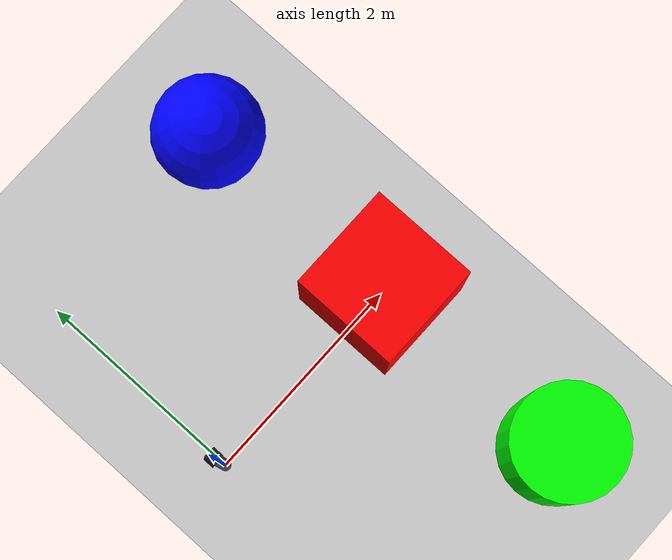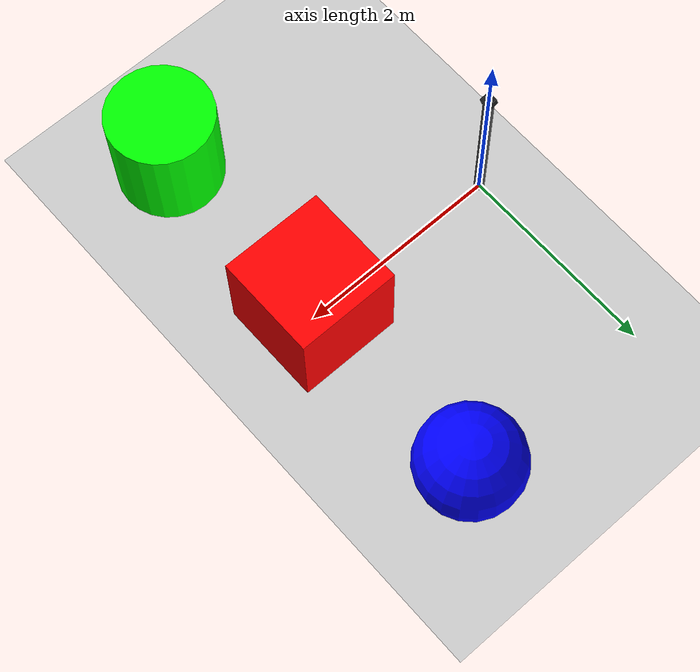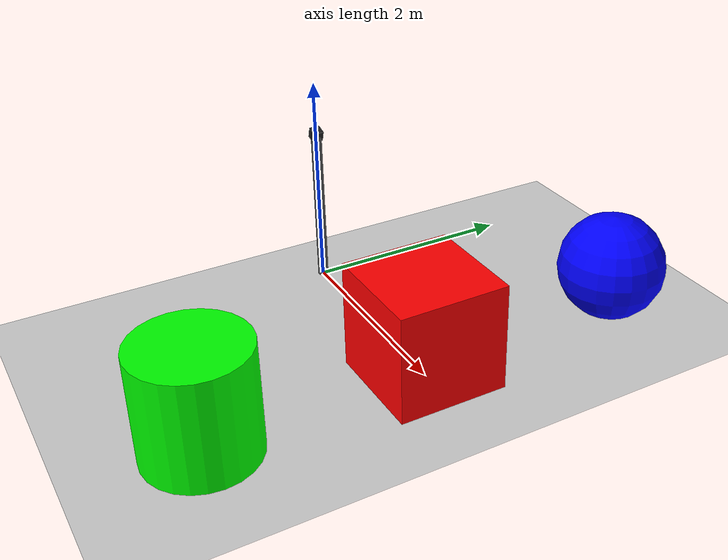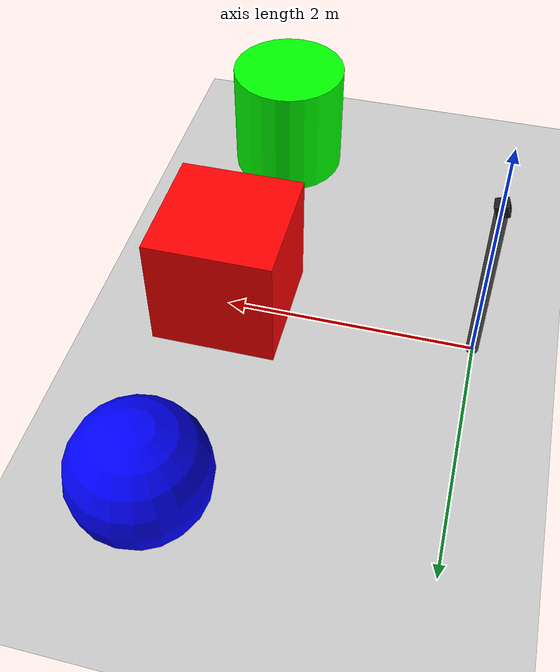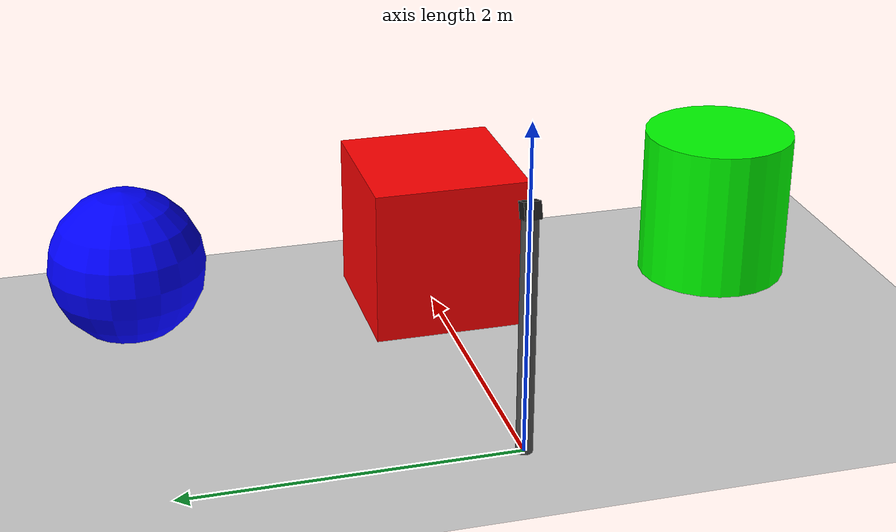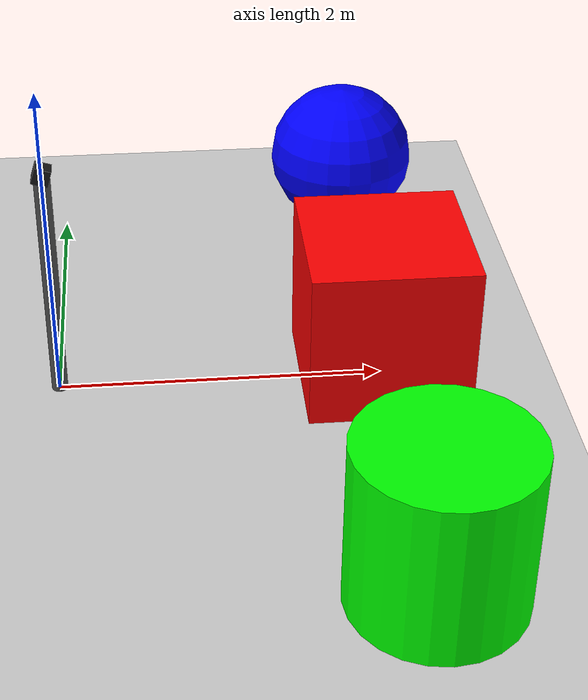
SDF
<?xml version="1.0" ?>
<sdf version="1.8">
  <world name="camera_world">

    <!-- Physics settings -->
    <physics name="1ms" type="ignored">
      <max_step_size>0.001</max_step_size>
      <real_time_factor>1.0</real_time_factor>
    </physics>

    <!-- Plugins -->
    <plugin filename="gz-sim-physics-system" name="gz::sim::systems::Physics"/>
    <plugin filename="gz-sim-sensors-system" name="gz::sim::systems::Sensors">
      <render_engine>ogre</render_engine>
    </plugin>
    <plugin filename="gz-sim-scene-broadcaster-system" name="gz::sim::systems::SceneBroadcaster"/>

    <!-- Lighting -->
    <light type="directional" name="sun">
      <cast_shadows>true</cast_shadows>
      <pose>0 0 10 0 0 0</pose>
      <diffuse>0.8 0.8 0.8 1</diffuse>
      <specular>0.2 0.2 0.2 1</specular>
      <direction>-0.5 0.1 -0.9</direction>
    </light>

    <!-- Ground plane -->
    <model name="ground_plane">
      <static>true</static>
      <link name="link">
        <collision name="collision">
          <geometry>
            <plane>
              <normal>0 0 1</normal>
              <size>100 100</size>
            </plane>
          </geometry>
        </collision>
        <visual name="visual">
          <geometry>
            <plane>
              <normal>0 0 1</normal>
              <size>100 100</size>
            </plane>
          </geometry>
          <material>
            <ambient>0.8 0.8 0.8 1</ambient>
            <diffuse>0.8 0.8 0.8 1</diffuse>
          </material>
        </visual>
      </link>
    </model>

    <!-- Red box -->
    <model name="red_box">
      <pose>2 0 0.5 0 0 0</pose>
      <link name="link">
        <inertial>
          <mass>1.0</mass>
          <inertia>
            <ixx>0.167</ixx>
            <iyy>0.167</iyy>
            <izz>0.167</izz>
          </inertia>
        </inertial>
        <collision name="collision">
          <geometry>
            <box><size>1 1 1</size></box>
          </geometry>
        </collision>
        <visual name="visual">
          <geometry>
            <box><size>1 1 1</size></box>
          </geometry>
          <material>
            <ambient>1 0 0 1</ambient>
            <diffuse>1 0 0 1</diffuse>
          </material>
        </visual>
      </link>
    </model>

    <!-- Blue sphere -->
    <model name="blue_sphere">
      <pose>2 2 0.5 0 0 0</pose>
      <link name="link">
        <inertial>
          <mass>1.0</mass>
          <inertia>
            <ixx>0.1</ixx>
            <iyy>0.1</iyy>
            <izz>0.1</izz>
          </inertia>
        </inertial>
        <collision name="collision">
          <geometry>
            <sphere><radius>0.5</radius></sphere>
          </geometry>
        </collision>
        <visual name="visual">
          <geometry>
            <sphere><radius>0.5</radius></sphere>
          </geometry>
          <material>
            <ambient>0 0 1 1</ambient>
            <diffuse>0 0 1 1</diffuse>
          </material>
        </visual>
      </link>
    </model>

    <!-- Green cylinder -->
    <model name="green_cylinder">
      <pose>2 -2 0.5 0 0 0</pose>
      <link name="link">
        <inertial>
          <mass>1.0</mass>
          <inertia>
            <ixx>0.146</ixx>
            <iyy>0.146</iyy>
            <izz>0.125</izz>
          </inertia>
        </inertial>
        <collision name="collision">
          <geometry>
            <cylinder>
              <radius>0.5</radius>
              <length>1</length>
            </cylinder>
          </geometry>
        </collision>
        <visual name="visual">
          <geometry>
            <cylinder>
              <radius>0.5</radius>
              <length>1</length>
            </cylinder>
          </geometry>
          <material>
            <ambient>0 1 0 1</ambient>
            <diffuse>0 1 0 1</diffuse>
          </material>
        </visual>
      </link>
    </model>

    <!-- Camera sensor on a post -->
    <model name="camera_post">
      <static>true</static>
      <pose>0 0 0 0 0 0</pose>

      <!-- Post -->
      <link name="post_link">
        <visual name="post_visual">
          <pose>0 0 0.75 0 0 0</pose>
          <geometry>
            <cylinder>
              <radius>0.05</radius>
              <length>1.5</length>
            </cylinder>
          </geometry>
          <material>
            <ambient>0.3 0.3 0.3 1</ambient>
            <diffuse>0.3 0.3 0.3 1</diffuse>
          </material>
        </visual>
      </link>

      <!-- Camera -->
      <link name="camera_link">
        <pose>0 0 1.5 0 0.3 0</pose>
        <visual name="camera_visual">
          <geometry>
            <box><size>0.1 0.1 0.1</size></box>
          </geometry>
          <material>
            <ambient>0.1 0.1 0.1 1</ambient>
            <diffuse>0.1 0.1 0.1 1</diffuse>
          </material>
        </visual>
        <sensor name="camera" type="camera">
          <always_on>1</always_on>
          <update_rate>30</update_rate>
          <visualize>true</visualize>
          <topic>camera</topic>
          <camera>
            <horizontal_fov>1.047</horizontal_fov>
            <image>
              <width>640</width>
              <height>480</height>
              <format>R8G8B8</format>
            </image>
            <clip>
              <near>0.1</near>
              <far>100</far>
            </clip>
          </camera>
        </sensor>
      </link>

      <joint name="post_to_camera" type="fixed">
        <parent>post_link</parent>
        <child>camera_link</child>
      </joint>
    </model>

  </world>
</sdf>
